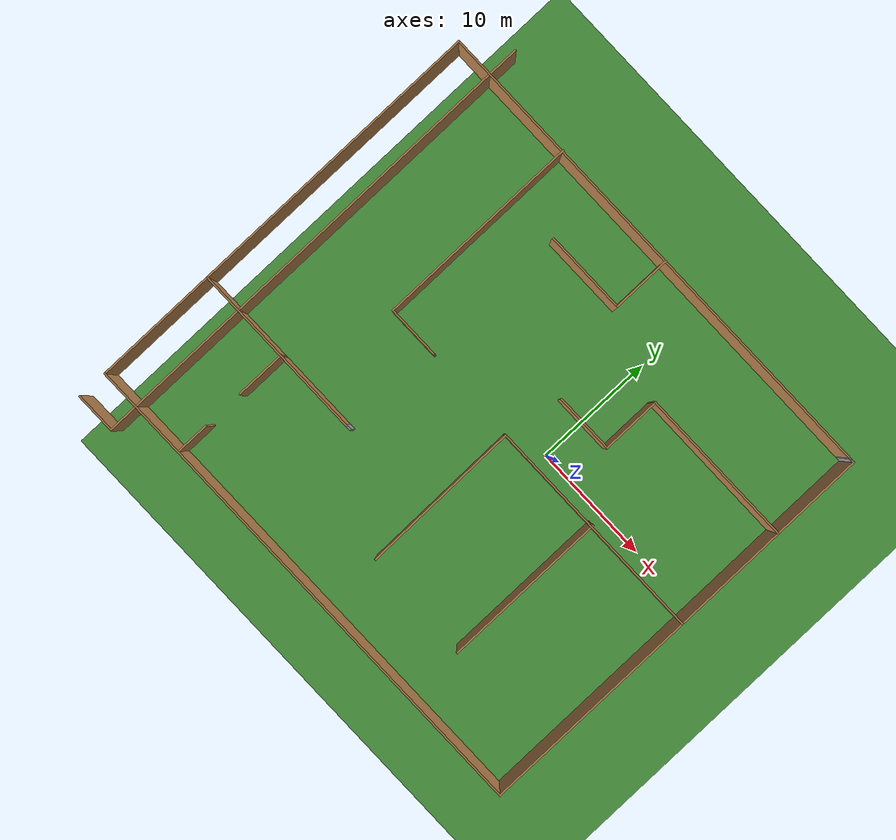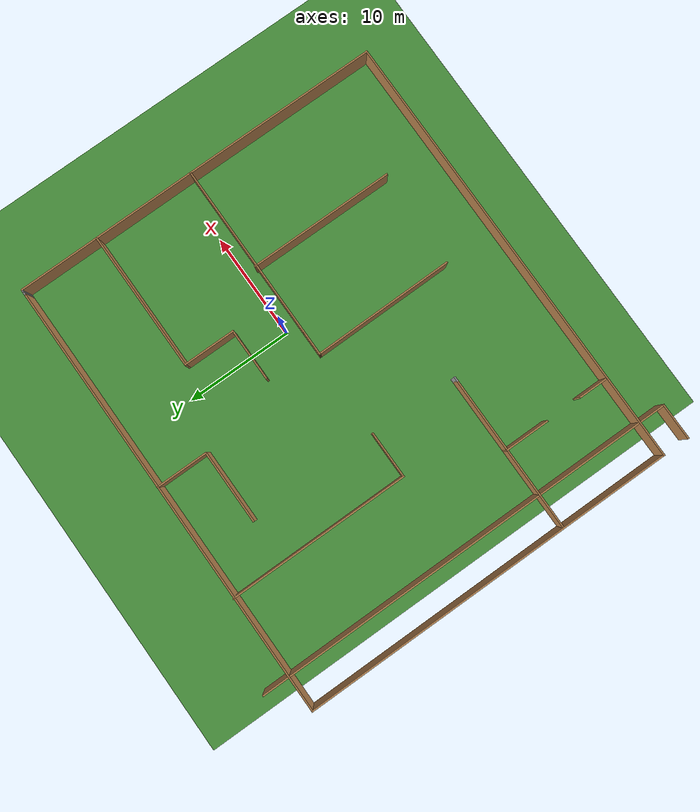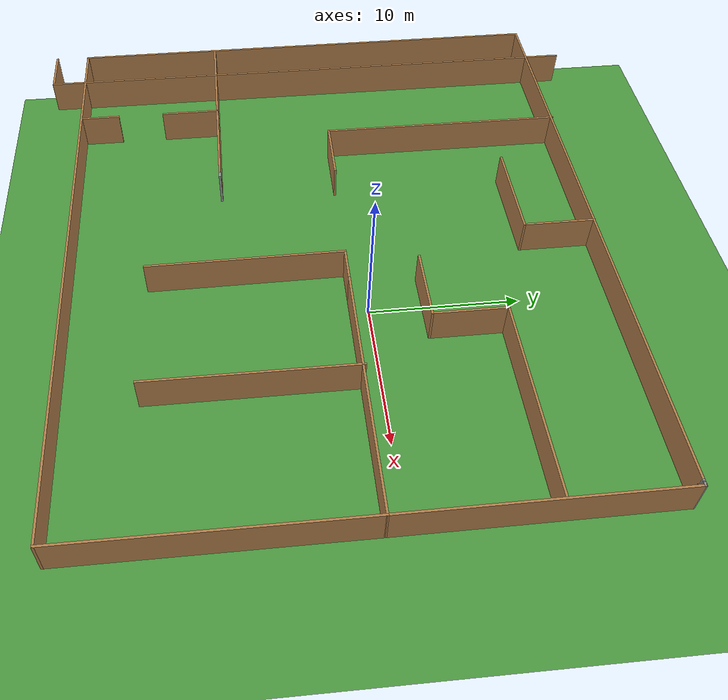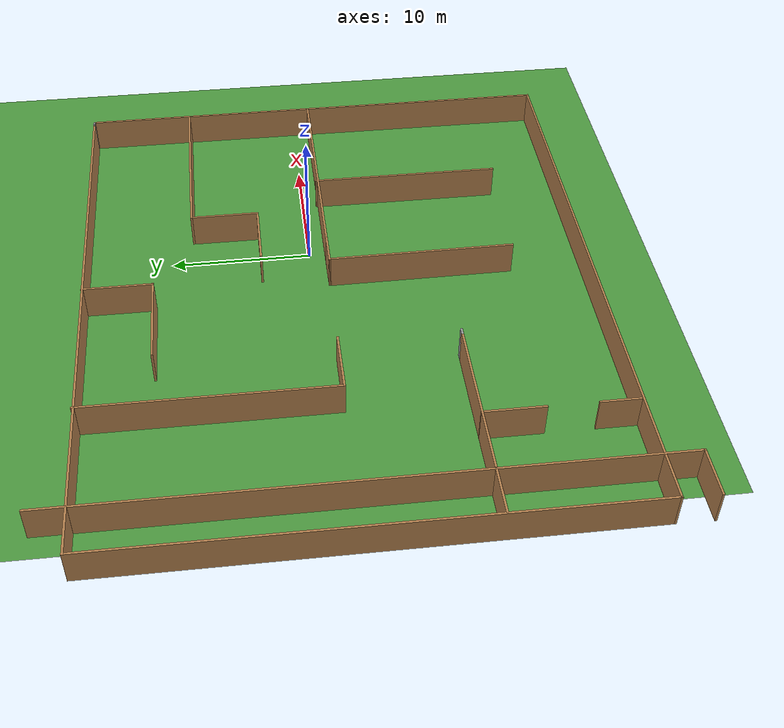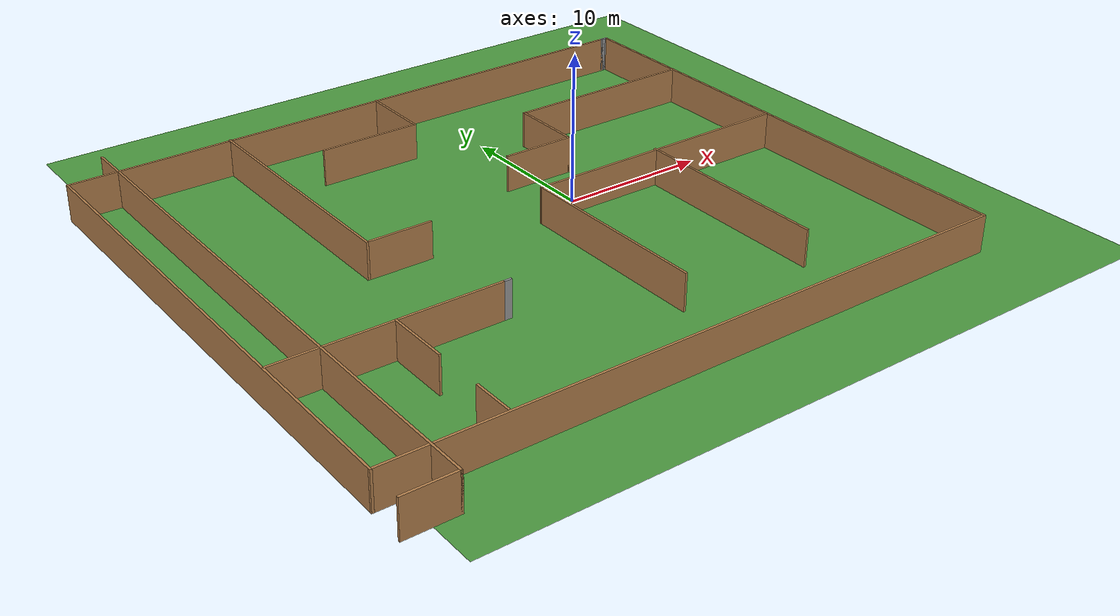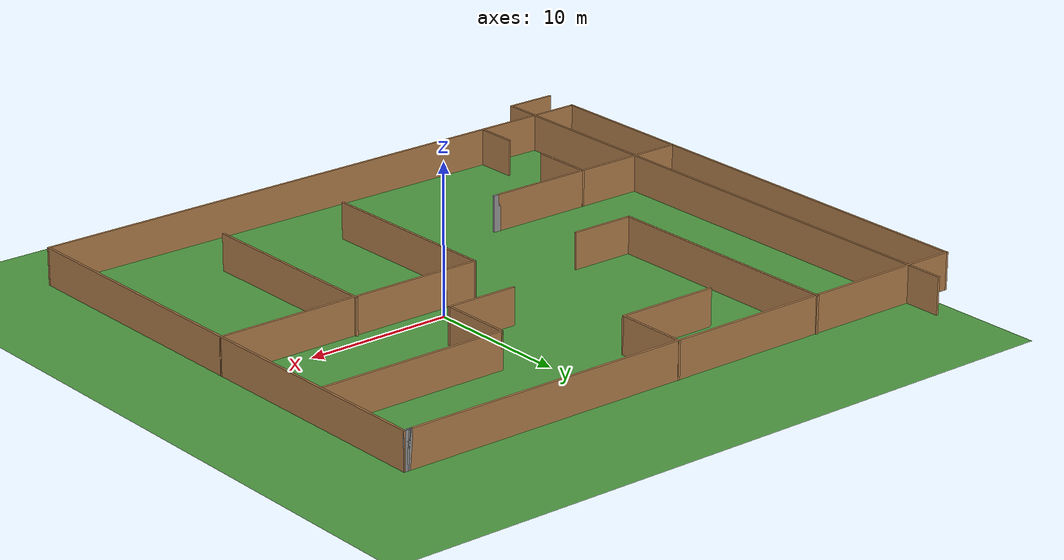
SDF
<sdf version="1.7">
 <world name="test_world">
  <model name="ground_grass_plane">
   <static>1</static>
   <link name="link">
    <collision name="collision">
     <geometry><plane><normal>0 0 1</normal><size>500 500</size></plane></geometry>
     <surface><friction><ode><mu>0.5</mu><mu2>0.5</mu2></ode></friction></surface>
    </collision>
    <visual name="visual_0">
     <cast_shadows>0</cast_shadows>
     <geometry><plane><normal>0 0 1</normal><size>50 50</size></plane></geometry>
     <material>
      <script>
       <uri>model://ground_grass_plane/materials/scripts</uri>
       <uri>model://ground_grass_plane/materials/textures</uri>
       <name>vrc/grass</name>
      </script>
     </material>
    </visual>
   </link>
  </model>
  <scene><shadows>0</shadows><ambient>0.4 0.4 0.4 1</ambient><background>0.7 0.7 0.7 1</background></scene>
  <physics type="ode">
   <real_time_update_rate>1000</real_time_update_rate>
   <max_step_size>0.001</max_step_size>
   <real_time_factor>1</real_time_factor>
   <ode>
    <solver>
     <type>quick</type>
     <iters>150</iters>
     <precon_iters>0</precon_iters>
     <sor>1.4</sor>
     <use_dynamic_moi_rescaling>1</use_dynamic_moi_rescaling>
    </solver>
    <constraints>
     <cfm>1e-05</cfm>
     <erp>0.2</erp>
     <contact_max_correcting_vel>2000</contact_max_correcting_vel>
     <contact_surface_layer>0.01</contact_surface_layer>
    </constraints>
   </ode>
  </physics>
  <plugin name="sensor_base_attacher_plugin" filename="libsensor_base_attacher_plugin.so">
   <robot_model_name>botanbot_simple</robot_model_name>
   <robot_base_link_name>base_link</robot_base_link_name>
   <sensor_suite_model_name>full_sensor_suite</sensor_suite_model_name>
   <sensor_suite_base_link_name>base_sensor_link</sensor_suite_base_link_name>
  </plugin>
  <gravity>0 0 -9.8</gravity>
  <magnetic_field>6e-06 2.3e-05 -4.2e-05</magnetic_field>
  <atmosphere type="adiabatic"/>
  <audio><device>default</device></audio>
  <spherical_coordinates>
   <surface_model>EARTH_WGS84</surface_model>
   <latitude_deg>0</latitude_deg>
   <longitude_deg>0</longitude_deg>
   <elevation>0</elevation>
   <heading_deg>0</heading_deg>
  </spherical_coordinates>
  <model name="sensor_frames"/>
  <model name="Untitled">
   <pose>-5.55489 -1.70964 0 0 -0 0</pose>
   <link name="Wall_0">
    <collision name="Wall_0_Collision">
     <geometry><box><size>16.75 0.15 2.5</size></box></geometry>
     <pose>0 0 1.25 0 -0 0</pose>
    </collision>
    <visual name="Wall_0_Visual">
     <pose>0 0 1.25 0 -0 0</pose>
     <geometry><box><size>16.75 0.15 2.5</size></box></geometry>
     <material>
      <script><uri>file://media/materials/scripts/gazebo.material</uri><name>Gazebo/Wood</name></script>
      <ambient>1 1 1 1</ambient>
     </material>
     <meta><layer>0</layer></meta>
    </visual>
    <pose>12.8749 0.509638 0 0 -0 0</pose>
   </link>
   <link name="Wall_1">
    <collision name="Wall_1_Collision">
     <geometry><box><size>18.5 0.15 2.5</size></box></geometry>
     <pose>0 0 1.25 0 -0 0</pose>
    </collision>
    <visual name="Wall_1_Visual">
     <pose>0 0 1.25 0 -0 0</pose>
     <geometry><box><size>18.5 0.15 2.5</size></box></geometry>
     <material>
      <script><uri>file://media/materials/scripts/gazebo.material</uri><name>Gazebo/Wood</name></script>
      <ambient>1 1 1 1</ambient>
     </material>
     <meta><layer>0</layer></meta>
    </visual>
    <pose>21.1749 -8.66536 0 0 -0 -1.5708</pose>
   </link>
   <link name="Wall_11">
    <collision name="Wall_11_Collision">
     <geometry><box><size>17.25 0.15 2.5</size></box></geometry>
     <pose>0 0 1.25 0 -0 0</pose>
    </collision>
    <visual name="Wall_11_Visual">
     <pose>0 0 1.25 0 -0 0</pose>
     <geometry><box><size>17.25 0.15 2.5</size></box></geometry>
     <material>
      <script><uri>file://media/materials/scripts/gazebo.material</uri><name>Gazebo/Wood</name></script>
      <ambient>1 1 1 1</ambient>
     </material>
     <meta><layer>0</layer></meta>
    </visual>
    <pose>-10.1043 9.29036 0 0 -0 -1.5708</pose>
   </link>
   <link name="Wall_12">
    <collision name="Wall_12_Collision">
     <geometry><box><size>4.5 0.15 2.5</size></box></geometry>
     <pose>0 0 1.25 0 -0 0</pose>
    </collision>
    <visual name="Wall_12_Visual">
     <pose>0 0 1.25 0 -0 0</pose>
     <geometry><box><size>4.5 0.15 2.5</size></box></geometry>
     <material>
      <script><uri>file://media/materials/scripts/gazebo.material</uri><name>Gazebo/Wood</name></script>
      <ambient>1 1 1 1</ambient>
     </material>
     <meta><layer>0</layer></meta>
    </visual>
    <pose>-7.92928 0.740364 0 0 -0 0</pose>
   </link>
   <link name="Wall_14">
    <collision name="Wall_14_Collision">
     <geometry><box><size>15 0.15 2.5</size></box></geometry>
     <pose>0 0 1.25 0 -0 0</pose>
    </collision>
    <visual name="Wall_14_Visual">
     <pose>0 0 1.25 0 -0 0</pose>
     <geometry><box><size>15 0.15 2.5</size></box></geometry>
     <material>
      <script><uri>file://media/materials/scripts/gazebo.material</uri><name>Gazebo/Wood</name></script>
      <ambient>1 1 1 1</ambient>
     </material>
     <meta><layer>0</layer></meta>
    </visual>
    <pose>-13.6934 -7.52932 0 0 -0 0</pose>
   </link>
   <link name="Wall_15">
    <collision name="Wall_15_Collision">
     <geometry><box><size>0.5 0.15 2.5</size></box></geometry>
     <pose>0 0 1.25 0 -0 0</pose>
    </collision>
    <visual name="Wall_15_Visual">
     <pose>0 0 1.25 0 -0 0</pose>
     <geometry><box><size>0.5 0.15 2.5</size></box></geometry>
     <material>
      <script><uri>file://media/materials/scripts/gazebo.material</uri><name>Gazebo/Grey</name></script>
      <ambient>1 1 1 1</ambient>
     </material>
     <meta><layer>0</layer></meta>
    </visual>
    <pose>-6.09343 -7.52932 0 0 -0 0</pose>
   </link>
   <link name="Wall_18">
    <collision name="Wall_18_Collision">
     <geometry><box><size>13.75 0.15 2.5</size></box></geometry>
     <pose>0 0 1.25 0 -0 0</pose>
    </collision>
    <visual name="Wall_18_Visual">
     <pose>0 0 1.25 0 -0 0</pose>
     <geometry><box><size>13.75 0.15 2.5</size></box></geometry>
     <material>
      <script><uri>file://media/materials/scripts/gazebo.material</uri><name>Gazebo/Wood</name></script>
      <ambient>1 1 1 1</ambient>
     </material>
     <meta><layer>0</layer></meta>
    </visual>
    <pose>11.429 -6.16152 0 0 -0 -1.5708</pose>
   </link>
   <link name="Wall_2">
    <collision name="Wall_2_Collision">
     <geometry><box><size>42.5 0.15 2.5</size></box></geometry>
     <pose>0 0 1.25 0 -0 0</pose>
    </collision>
    <visual name="Wall_2_Visual">
     <pose>0 0 1.25 0 -0 0</pose>
     <geometry><box><size>42.5 0.15 2.5</size></box></geometry>
     <material>
      <script><uri>file://media/materials/scripts/gazebo.material</uri><name>Gazebo/Wood</name></script>
      <ambient>1 1 1 1</ambient>
     </material>
     <meta><layer>0</layer></meta>
    </visual>
    <pose>-0.000107 -17.8404 0 0 -0 3.14159</pose>
   </link>
   <link name="Wall_20">
    <collision name="Wall_20_Collision">
     <geometry><box><size>2.5 0.15 2.5</size></box></geometry>
     <pose>0 0 1.25 0 -0 0</pose>
    </collision>
    <visual name="Wall_20_Visual">
     <pose>0 0 1.25 0 -0 0</pose>
     <geometry><box><size>2.5 0.15 2.5</size></box></geometry>
     <material>
      <script><uri>file://media/materials/scripts/gazebo.material</uri><name>Gazebo/Wood</name></script>
      <ambient>1 1 1 1</ambient>
     </material>
     <meta><layer>0</layer></meta>
    </visual>
    <pose>3.39989 0.509638 0 0 -0 3.14159</pose>
   </link>
   <link name="Wall_21">
    <collision name="Wall_21_Collision">
     <geometry><box><size>13.3252 0.15 2.5</size></box></geometry>
     <pose>0 0 1.25 0 -0 0</pose>
    </collision>
    <visual name="Wall_21_Visual">
     <pose>0 0 1.25 0 -0 0</pose>
     <geometry><box><size>13.3252 0.15 2.5</size></box></geometry>
     <material>
      <script><uri>file://media/materials/scripts/gazebo.material</uri><name>Gazebo/Wood</name></script>
      <ambient>1 1 1 1</ambient>
     </material>
     <meta><layer>0</layer></meta>
    </visual>
    <pose>2.27897 -6.07775 0 0 -0 -1.56259</pose>
   </link>
   <link name="Wall_23">
    <collision name="Wall_23_Collision">
     <geometry><box><size>13.25 0.15 2.5</size></box></geometry>
     <pose>0 0 1.25 0 -0 0</pose>
    </collision>
    <visual name="Wall_23_Visual">
     <pose>0 0 1.25 0 -0 0</pose>
     <geometry><box><size>13.25 0.15 2.5</size></box></geometry>
     <material>
      <script><uri>file://media/materials/scripts/gazebo.material</uri><name>Gazebo/Wood</name></script>
      <ambient>1 1 1 1</ambient>
     </material>
     <meta><layer>0</layer></meta>
    </visual>
    <pose>14.538 10.1598 0 0 -0 3.14159</pose>
   </link>
   <link name="Wall_24">
    <collision name="Wall_24_Collision">
     <geometry><box><size>5 0.15 2.5</size></box></geometry>
     <pose>0 0 1.25 0 -0 0</pose>
    </collision>
    <visual name="Wall_24_Visual">
     <pose>0 0 1.25 0 -0 0</pose>
     <geometry><box><size>5 0.15 2.5</size></box></geometry>
     <material>
      <script><uri>file://media/materials/scripts/gazebo.material</uri><name>Gazebo/Wood</name></script>
      <ambient>1 1 1 1</ambient>
     </material>
     <meta><layer>0</layer></meta>
    </visual>
    <pose>7.98804 7.73482 0 0 -0 -1.5708</pose>
   </link>
   <link name="Wall_25">
    <collision name="Wall_25_Collision">
     <geometry><box><size>5 0.15 2.5</size></box></geometry>
     <pose>0 0 1.25 0 -0 0</pose>
    </collision>
    <visual name="Wall_25_Visual">
     <pose>0 0 1.25 0 -0 0</pose>
     <geometry><box><size>5 0.15 2.5</size></box></geometry>
     <material>
      <script><uri>file://media/materials/scripts/gazebo.material</uri><name>Gazebo/Wood</name></script>
      <ambient>1 1 1 1</ambient>
     </material>
     <meta><layer>0</layer></meta>
    </visual>
    <pose>5.56304 5.30982 0 0 -0 3.14159</pose>
   </link>
   <link name="Wall_27">
    <collision name="Wall_27_Collision">
     <geometry><box><size>5 0.15 2.5</size></box></geometry>
     <pose>0 0 1.25 0 -0 0</pose>
    </collision>
    <visual name="Wall_27_Visual">
     <pose>0 0 1.25 0 -0 0</pose>
     <geometry><box><size>5 0.15 2.5</size></box></geometry>
     <material>
      <script><uri>file://media/materials/scripts/gazebo.material</uri><name>Gazebo/Wood</name></script>
      <ambient>1 1 1 1</ambient>
     </material>
     <meta><layer>0</layer></meta>
    </visual>
    <pose>0.949015 15.3575 0 0 -0 -1.5708</pose>
   </link>
   <link name="Wall_28">
    <collision name="Wall_28_Collision">
     <geometry><box><size>7 0.15 2.5</size></box></geometry>
     <pose>0 0 1.25 0 -0 0</pose>
    </collision>
    <visual name="Wall_28_Visual">
     <pose>0 0 1.25 0 -0 0</pose>
     <geometry><box><size>7 0.15 2.5</size></box></geometry>
     <material>
      <script><uri>file://media/materials/scripts/gazebo.material</uri><name>Gazebo/Wood</name></script>
      <ambient>1 1 1 1</ambient>
     </material>
     <meta><layer>0</layer></meta>
    </visual>
    <pose>-2.47599 12.9325 0 0 -0 3.14159</pose>
   </link>
   <link name="Wall_3">
    <collision name="Wall_3_Collision">
     <geometry><box><size>35.75 0.15 2.5</size></box></geometry>
     <pose>0 0 1.25 0 -0 0</pose>
    </collision>
    <visual name="Wall_3_Visual">
     <pose>0 0 1.25 0 -0 0</pose>
     <geometry><box><size>35.75 0.15 2.5</size></box></geometry>
     <material>
      <script><uri>file://media/materials/scripts/gazebo.material</uri><name>Gazebo/Wood</name></script>
      <ambient>1 1 1 1</ambient>
     </material>
     <meta><layer>0</layer></meta>
    </visual>
    <pose>-21.1751 -0.040362 0 0 -0 1.5708</pose>
   </link>
   <link name="Wall_30">
    <collision name="Wall_30_Collision">
     <geometry><box><size>2.75 0.15 2.5</size></box></geometry>
     <pose>0 0 1.25 0 -0 0</pose>
    </collision>
    <visual name="Wall_30_Visual">
     <pose>0 0 1.25 0 -0 0</pose>
     <geometry><box><size>2.75 0.15 2.5</size></box></geometry>
     <material>
      <script><uri>file://media/materials/scripts/gazebo.material</uri><name>Gazebo/Wood</name></script>
      <ambient>1 1 1 1</ambient>
     </material>
     <meta><layer>0</layer></meta>
    </visual>
    <pose>-13.3152 -16.371 0 0 -0 1.5708</pose>
   </link>
   <link name="Wall_32">
    <collision name="Wall_32_Collision">
     <geometry><box><size>4.25 0.15 2.5</size></box></geometry>
     <pose>0 0 1.25 0 -0 0</pose>
    </collision>
    <visual name="Wall_32_Visual">
     <pose>0 0 1.25 0 -0 0</pose>
     <geometry><box><size>4.25 0.15 2.5</size></box></geometry>
     <material>
      <script><uri>file://media/materials/scripts/gazebo.material</uri><name>Gazebo/Wood</name></script>
      <ambient>1 1 1 1</ambient>
     </material>
     <meta><layer>0</layer></meta>
    </visual>
    <pose>-13.3152 -9.57376 0 0 -0 -1.5708</pose>
   </link>
   <link name="Wall_4">
    <collision name="Wall_4_Collision">
     <geometry><box><size>42 0.15 2.5</size></box></geometry>
     <pose>0 0 1.25 0 -0 0</pose>
    </collision>
    <visual name="Wall_4_Visual">
     <pose>0 0 1.25 0 -0 0</pose>
     <geometry><box><size>42 0.15 2.5</size></box></geometry>
     <material>
      <script><uri>file://media/materials/scripts/gazebo.material</uri><name>Gazebo/Wood</name></script>
      <ambient>1 1 1 1</ambient>
     </material>
     <meta><layer>0</layer></meta>
    </visual>
    <pose>-0.250107 17.7596 0 0 -0 0</pose>
   </link>
   <link name="Wall_5">
    <collision name="Wall_5_Collision">
     <geometry><box><size>0.25 0.15 2.5</size></box></geometry>
     <pose>0 0 1.25 0 -0 0</pose>
    </collision>
    <visual name="Wall_5_Visual">
     <pose>0 0 1.25 0 -0 0</pose>
     <geometry><box><size>0.25 0.15 2.5</size></box></geometry>
     <material>
      <script><uri>file://media/materials/scripts/gazebo.material</uri><name>Gazebo/Grey</name></script>
      <ambient>1 1 1 1</ambient>
     </material>
     <meta><layer>0</layer></meta>
    </visual>
    <pose>20.7249 17.7596 0 0 -0 0</pose>
   </link>
   <link name="Wall_6">
    <collision name="Wall_6_Collision">
     <geometry><box><size>0.25 0.15 2.5</size></box></geometry>
     <pose>0 0 1.25 0 -0 0</pose>
    </collision>
    <visual name="Wall_6_Visual">
     <pose>0 0 1.25 0 -0 0</pose>
     <geometry><box><size>0.25 0.15 2.5</size></box></geometry>
     <material>
      <script><uri>file://media/materials/scripts/gazebo.material</uri><name>Gazebo/Grey</name></script>
      <ambient>1 1 1 1</ambient>
     </material>
     <meta><layer>0</layer></meta>
    </visual>
    <pose>20.8249 17.7596 0 0 -0 0</pose>
   </link>
   <link name="Wall_7">
    <collision name="Wall_7_Collision">
     <geometry><box><size>0.25 0.15 2.5</size></box></geometry>
     <pose>0 0 1.25 0 -0 0</pose>
    </collision>
    <visual name="Wall_7_Visual">
     <pose>0 0 1.25 0 -0 0</pose>
     <geometry><box><size>0.25 0.15 2.5</size></box></geometry>
     <material>
      <script><uri>file://media/materials/scripts/gazebo.material</uri><name>Gazebo/Grey</name></script>
      <ambient>1 1 1 1</ambient>
     </material>
     <meta><layer>0</layer></meta>
    </visual>
    <pose>20.8249 17.7596 0 0 -0 3.14159</pose>
   </link>
   <link name="Wall_8">
    <collision name="Wall_8_Collision">
     <geometry><box><size>0.5 0.15 2.5</size></box></geometry>
     <pose>0 0 1.25 0 -0 0</pose>
    </collision>
    <visual name="Wall_8_Visual">
     <pose>0 0 1.25 0 -0 0</pose>
     <geometry><box><size>0.5 0.15 2.5</size></box></geometry>
     <material>
      <script><uri>file://media/materials/scripts/gazebo.material</uri><name>Gazebo/Grey</name></script>
      <ambient>1 1 1 1</ambient>
     </material>
     <meta><layer>0</layer></meta>
    </visual>
    <pose>20.9499 17.7596 0 0 -0 0</pose>
   </link>
   <link name="Wall_9">
    <collision name="Wall_9_Collision">
     <geometry><box><size>17.4001 0.15 2.5</size></box></geometry>
     <pose>0 0 1.25 0 -0 0</pose>
    </collision>
    <visual name="Wall_9_Visual">
     <pose>0 0 1.25 0 -0 0</pose>
     <geometry><box><size>17.4001 0.15 2.5</size></box></geometry>
     <material>
      <script><uri>file://media/materials/scripts/gazebo.material</uri><name>Gazebo/Wood</name></script>
      <ambient>1 1 1 1</ambient>
     </material>
     <meta><layer>0</layer></meta>
    </visual>
    <pose>21.1499 9.13464 0 0 -0 -1.5679</pose>
   </link>
   <static>1</static>
  </model>
  <model name="Untitled_0">
   <pose>-13.42 -1.7243 0 0 -0 0</pose>
   <link name="Wall_47">
    <collision name="Wall_47_Collision">
     <geometry><box><size>3.5 0.15 2.5</size></box></geometry>
     <pose>0 0 1.25 0 -0 0</pose>
    </collision>
    <visual name="Wall_47_Visual">
     <pose>0 0 1.25 0 -0 0</pose>
     <geometry><box><size>3.5 0.15 2.5</size></box></geometry>
     <material>
      <script><uri>file://media/materials/scripts/gazebo.material</uri><name>Gazebo/Wood</name></script>
      <ambient>1 1 1 1</ambient>
     </material>
     <meta><layer>0</layer></meta>
    </visual>
    <pose>-11.67 -20.3 0 0 -0 0</pose>
   </link>
   <link name="Wall_48">
    <collision name="Wall_48_Collision">
     <geometry><box><size>40.75 0.15 2.5</size></box></geometry>
     <pose>0 0 1.25 0 -0 0</pose>
    </collision>
    <visual name="Wall_48_Visual">
     <pose>0 0 1.25 0 -0 0</pose>
     <geometry><box><size>40.75 0.15 2.5</size></box></geometry>
     <material>
      <script><uri>file://media/materials/scripts/gazebo.material</uri><name>Gazebo/Wood</name></script>
      <ambient>1 1 1 1</ambient>
     </material>
     <meta><layer>0</layer></meta>
    </visual>
    <pose>-9.995 0 0 0 -0 1.5708</pose>
   </link>
   <static>1</static>
  </model>
 </world>
</sdf>
